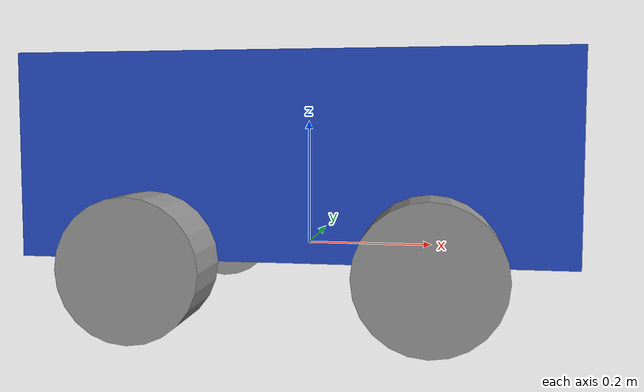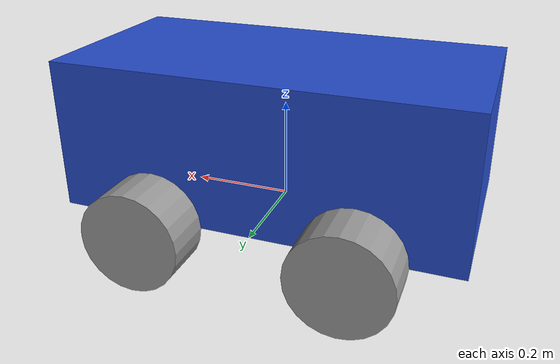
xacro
<?xml version="1.0"?>

<robot  xmlns:xacro = "https://www.ros.org/wiki/xacro">

    <link name="body">
        <visual>
            <origin xyz="0 0 0.15" rpy="0 0 0" />
            <geometry>
                <box size="0.8 0.4 0.3" />
            </geometry>
            <material name="blue" />
        </visual>

        <collision>
            <origin xyz="0 0 0.15" rpy="0 0 0" />
            <geometry>
                <box size="0.8 0.4 0.3" />
            </geometry>
        </collision>

        <inertial>
            <origin xyz="0 0 0.15" rpy="0 0 0" />
            <mass value="10"/>
            <inertia ixx="0.608333333" ixy="0" ixz="0" iyy="0.666666667" iyz="0" izz="0.208333333"/>
        </inertial>

    </link>

    <xacro:macro name="wheel_link" params="prefix y f1 f2">
        <link name="${prefix}_wheel">
            <visual>
                <origin xyz="0 ${y} 0" rpy="1.57 0 0" />
                <geometry>
                    <cylinder radius="0.1" length="0.1" />
                </geometry>
                <material name="grey" />
            </visual>

            <collision>
                <origin xyz="0 ${y} 0" rpy="1.57 0 0" />
                <geometry>
                    <cylinder radius="0.1" length="0.1" />
                </geometry>

                <gazebo>
                    <mu1>${f1}</mu1>
                    <mu2>${f2}</mu2>
                </gazebo>

            </collision>

            <inertial>
                <origin xyz="0 ${y} 0" rpy="1.57 0 0" />
                <mass value="2"/>
                <inertia ixx="0.006666667" ixy="0" ixz="0" iyy="0.006666667" iyz="0" izz="0.01"/>
            </inertial>

        </link>
    </xacro:macro>

    <xacro:macro name="joint" params="wheel xyz">
        <joint name="${wheel}_joint" type="continuous">
            <origin xyz="${xyz}" rpy="0 0 0" />
            <parent link = "body" />
            <child link = "${wheel}_wheel" />
            <axis xyz="0 1 0" />
        </joint>
    </xacro:macro>

    <xacro:wheel_link prefix="front_right" y="-0.05" f1="0.1" f2="0.1"/>
    <xacro:joint wheel="front_right" xyz="0.2 -0.2 0"/>

    <xacro:wheel_link prefix="back_right" y="-0.05" f1="0.9" f2="0.9"/>
    <xacro:joint wheel="back_right" xyz="-0.2 -0.2 0"/>

    <xacro:wheel_link prefix="front_left" y="0.05" f1="0.1" f2="0.1"/>
    <xacro:joint wheel="front_left" xyz="0.2 0.2 0"/>

    <xacro:wheel_link prefix="back_left" y="0.05" f1="0.9" f2="0.9"/>
    <xacro:joint wheel="back_left" xyz="-0.2 0.2 0"/>

</robot>
